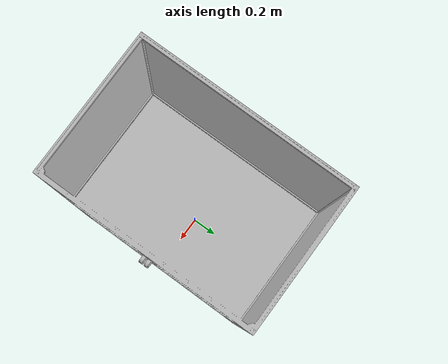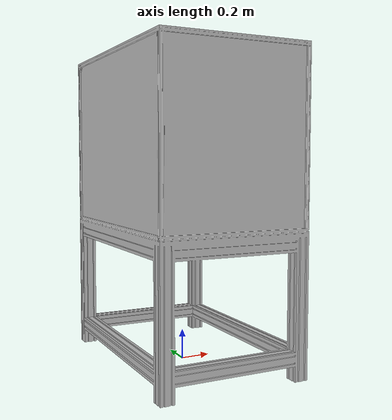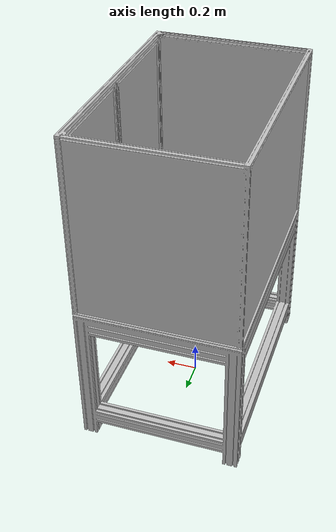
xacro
<?xml version="1.0" encoding="utf-8"?>
<robot name="cell_description" xmlns:xacro="http://www.ros.org/wiki/xacro">
  <xacro:macro name="robot_cell" params="prefix">
    <link name="base_link">
      <inertial>
        <origin xyz="0.0038941 -2.2879E-15 0.80696" rpy="0 0 0" />
        <mass value="153.97" />
        <inertia ixx="18.956" ixy="-5.5919E-11" ixz="-1.2948E-14" iyy="9.9166" iyz="1.6316E-11" izz="19.729" />
      </inertial>
      <visual>
        <origin xyz="0 0 0" rpy="0 0 0" />
        <geometry>
          <mesh filename="package://cell_description/meshes/base_link.STL" />
        </geometry>
        <material name="">
          <color rgba="0.75294 0.75294 0.75294 1" />
        </material>
      </visual>
      <collision>
        <origin xyz="0 0 0" rpy="0 0 0" />
        <geometry>
          <mesh filename="package://cell_description/meshes/base_link.STL" />
        </geometry>
      </collision>
    </link>
  </xacro:macro>

  <xacro:robot_cell prefix="" />

  <link name="world"/>
  <joint name="world_joint" type="fixed" >
    <parent link="world" />
    <child link="base_link" />
    <origin xyz="0 0 0" rpy="0 0 0" />
  </joint>
</robot>
